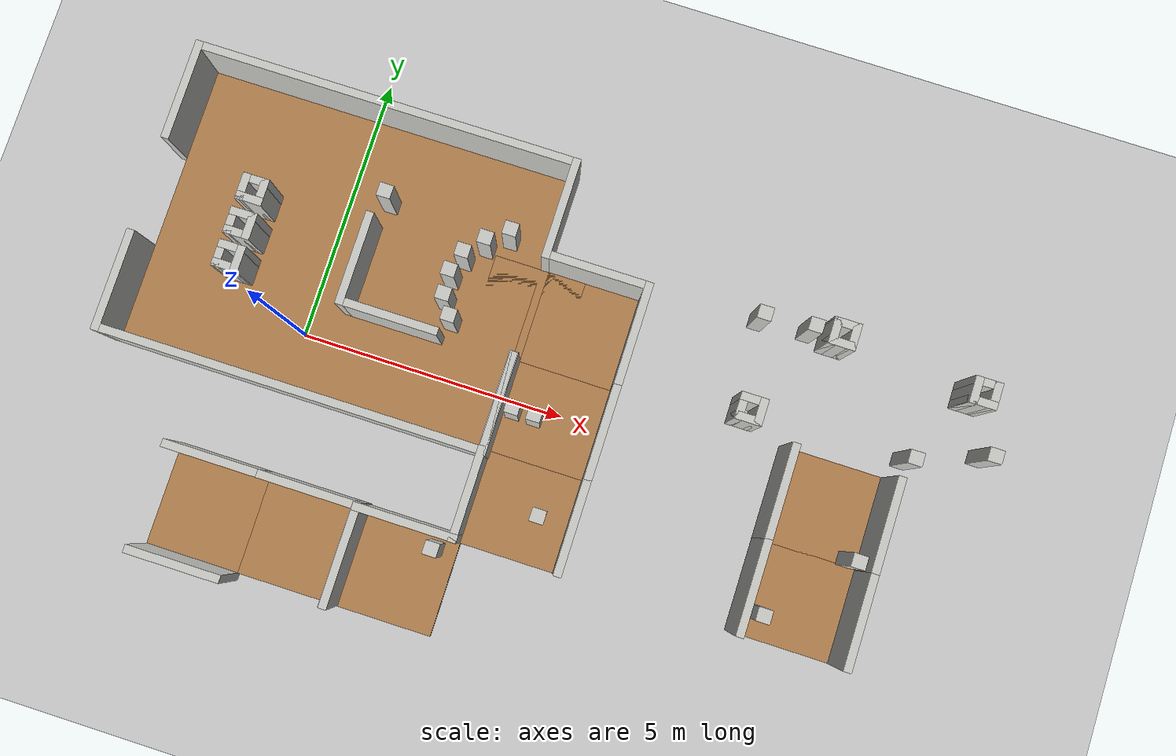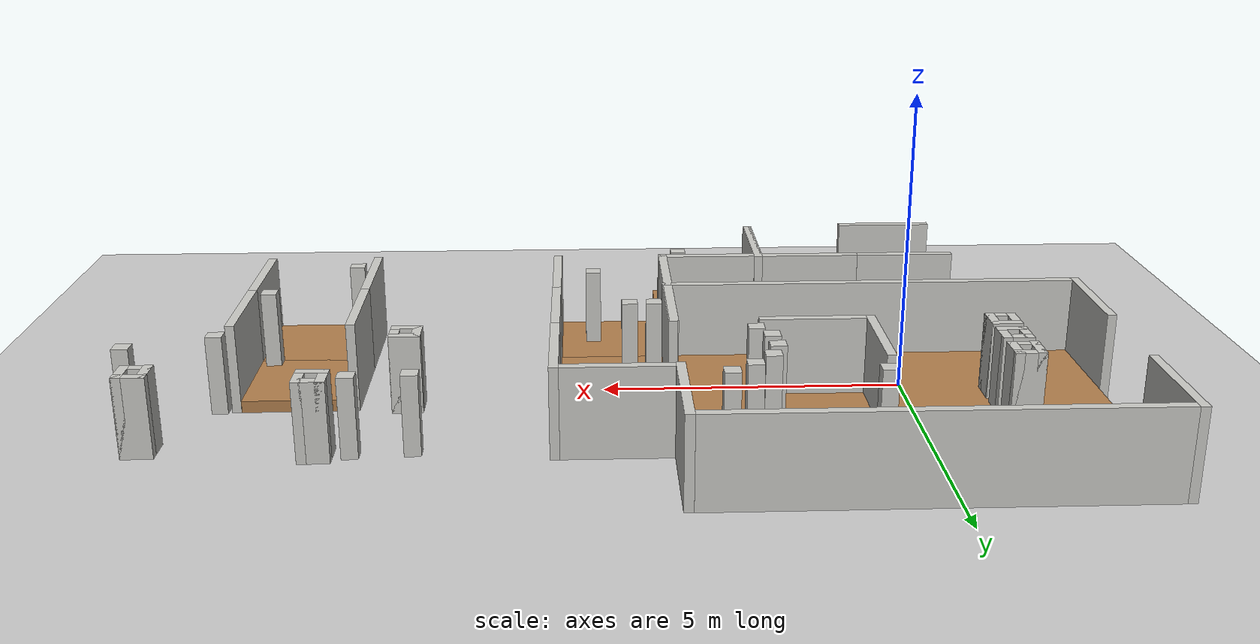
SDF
<sdf version="1.6">
 <world name="default">
  <model name="ground_plane">
   <static>1</static>
   <link name="link">
    <collision name="collision">
     <geometry><plane><normal>0 0 1</normal><size>100 100</size></plane></geometry>
     <surface><friction><ode><mu>100</mu><mu2>50</mu2></ode></friction></surface>
    </collision>
    <visual name="visual">
     <cast_shadows>0</cast_shadows>
     <geometry><plane><normal>0 0 1</normal><size>100 100</size></plane></geometry>
     <material>
      <script><uri>file://media/materials/scripts/gazebo.material</uri><name>Gazebo/Grey</name></script>
     </material>
    </visual>
   </link>
  </model>
  <model name="nerve_straight_7">
   <pose>-0.5793 -3.59925 0 0 0 -1.5708</pose>
   <link name="Wall_0">
    <collision name="Wall_0_Collision">
     <geometry><box><size>1.76 1.75 0.2</size></box></geometry>
     <pose>0 0 0.1 0 -0 0</pose>
    </collision>
    <visual name="Wall_0_Visual">
     <pose>0 0 0.1 0 -0 0</pose>
     <geometry><box><size>1.76 1.75 0.2</size></box></geometry>
     <material>
      <script><uri>file://media/materials/scripts/gazebo.material</uri><name>Gazebo/Wood</name></script>
      <ambient>1 0.764706 0.305882 1</ambient>
     </material>
    </visual>
    <pose>0.005 -0.002 0 0 -0 3.14159</pose>
   </link>
   <link name="Wall_2">
    <collision name="Wall_2_Collision">
     <geometry><box><size>1.75 0.15 1.5</size></box></geometry>
     <pose>0 0 0.75 0 -0 0</pose>
    </collision>
    <visual name="Wall_2_Visual">
     <pose>0 0 0.75 0 -0 0</pose>
     <geometry><box><size>1.75 0.15 1.5</size></box></geometry>
     <material>
      <script><uri>file://media/materials/scripts/gazebo.material</uri><name>Gazebo/CeilingTiled</name></script>
      <ambient>1 0.764706 0.305882 1</ambient>
     </material>
    </visual>
    <pose>-0.955 0.002 0 0 0 -1.5708</pose>
   </link>
   <link name="Wall_4">
    <collision name="Wall_4_Collision">
     <geometry><box><size>1.75 0.15 1.5</size></box></geometry>
     <pose>0 0 0.75 0 -0 0</pose>
    </collision>
    <visual name="Wall_4_Visual">
     <pose>0 0 0.75 0 -0 0</pose>
     <geometry><box><size>1.75 0.15 1.5</size></box></geometry>
     <material>
      <script><uri>file://media/materials/scripts/gazebo.material</uri><name>Gazebo/CeilingTiled</name></script>
      <ambient>1 0.764706 0.305882 1</ambient>
     </material>
    </visual>
    <pose>0.955 0.002 0 0 0 -1.5708</pose>
   </link>
   <static>1</static>
  </model>
  <model name="nerve_corner_5">
   <pose>1.24131 -3.5279 0 0 0 -1.5708</pose>
   <link name="Wall_0">
    <collision name="Wall_0_Collision">
     <geometry><box><size>1.76 1.75 0.2</size></box></geometry>
     <pose>0 0 0.1 0 -0 0</pose>
    </collision>
    <visual name="Wall_0_Visual">
     <pose>0 0 0.1 0 -0 0</pose>
     <geometry><box><size>1.76 1.75 0.2</size></box></geometry>
     <material>
      <script><uri>file://media/materials/scripts/gazebo.material</uri><name>Gazebo/Wood</name></script>
      <ambient>1 0.764706 0.305882 1</ambient>
     </material>
    </visual>
    <pose>0.077507 -0.077007 0 0 -0 3.14159</pose>
   </link>
   <link name="Wall_2">
    <collision name="Wall_2_Collision">
     <geometry><box><size>1.75 0.15 1.5</size></box></geometry>
     <pose>0 0 0.75 0 -0 0</pose>
    </collision>
    <visual name="Wall_2_Visual">
     <pose>0 0 0.75 0 -0 0</pose>
     <geometry><box><size>1.75 0.15 1.5</size></box></geometry>
     <material>
      <script><uri>file://media/materials/scripts/gazebo.material</uri><name>Gazebo/CeilingTiled</name></script>
      <ambient>1 0.764706 0.305882 1</ambient>
     </material>
    </visual>
    <pose>-0.882493 -0.073007 0 0 0 -1.5708</pose>
   </link>
   <link name="Wall_4">
    <collision name="Wall_4_Collision">
     <geometry><box><size>1.91042 0.15 1.5</size></box></geometry>
     <pose>0 0 0.75 0 -0 0</pose>
    </collision>
    <visual name="Wall_4_Visual">
     <pose>0 0 0.75 0 -0 0</pose>
     <geometry><box><size>1.91042 0.15 1.5</size></box></geometry>
     <material>
      <script><uri>file://media/materials/scripts/gazebo.material</uri><name>Gazebo/CeilingTiled</name></script>
      <ambient>1 0.764706 0.305882 1</ambient>
     </material>
    </visual>
    <pose>-0.002284 0.876825 0 0 -0 3.1414</pose>
   </link>
   <static>1</static>
  </model>
  <model name="nerve_corner_7">
   <pose>3.00607 -3.54167 0 0 -0 0</pose>
   <link name="Wall_0">
    <collision name="Wall_0_Collision">
     <geometry><box><size>1.76 1.75 0.2</size></box></geometry>
     <pose>0 0 0.1 0 -0 0</pose>
    </collision>
    <visual name="Wall_0_Visual">
     <pose>0 0 0.1 0 -0 0</pose>
     <geometry><box><size>1.76 1.75 0.2</size></box></geometry>
     <material>
      <script><uri>file://media/materials/scripts/gazebo.material</uri><name>Gazebo/Wood</name></script>
      <ambient>1 0.764706 0.305882 1</ambient>
     </material>
    </visual>
    <pose>0.077507 -0.077007 0 0 -0 3.14159</pose>
   </link>
   <link name="Wall_2">
    <collision name="Wall_2_Collision">
     <geometry><box><size>1.75 0.15 1.5</size></box></geometry>
     <pose>0 0 0.75 0 -0 0</pose>
    </collision>
    <visual name="Wall_2_Visual">
     <pose>0 0 0.75 0 -0 0</pose>
     <geometry><box><size>1.75 0.15 1.5</size></box></geometry>
     <material>
      <script><uri>file://media/materials/scripts/gazebo.material</uri><name>Gazebo/CeilingTiled</name></script>
      <ambient>1 0.764706 0.305882 1</ambient>
     </material>
    </visual>
    <pose>-0.882493 -0.073007 0 0 0 -1.5708</pose>
   </link>
   <link name="Wall_4">
    <collision name="Wall_4_Collision">
     <geometry><box><size>1.91042 0.15 1.5</size></box></geometry>
     <pose>0 0 0.75 0 -0 0</pose>
    </collision>
    <visual name="Wall_4_Visual">
     <pose>0 0 0.75 0 -0 0</pose>
     <geometry><box><size>1.91042 0.15 1.5</size></box></geometry>
     <material>
      <script><uri>file://media/materials/scripts/gazebo.material</uri><name>Gazebo/CeilingTiled</name></script>
      <ambient>1 0.764706 0.305882 1</ambient>
     </material>
    </visual>
    <pose>-0.002284 0.876825 0 0 -0 3.1414</pose>
   </link>
   <static>1</static>
  </model>
  <model name="nerve_straight_8">
   <pose>4.83321 -1.87129 0 0 -0 0</pose>
   <link name="Wall_0">
    <collision name="Wall_0_Collision">
     <geometry><box><size>1.76 1.75 0.2</size></box></geometry>
     <pose>0 0 0.1 0 -0 0</pose>
    </collision>
    <visual name="Wall_0_Visual">
     <pose>0 0 0.1 0 -0 0</pose>
     <geometry><box><size>1.76 1.75 0.2</size></box></geometry>
     <material>
      <script><uri>file://media/materials/scripts/gazebo.material</uri><name>Gazebo/Wood</name></script>
      <ambient>1 0.764706 0.305882 1</ambient>
     </material>
    </visual>
    <pose>0.005 -0.002 0 0 -0 3.14159</pose>
   </link>
   <link name="Wall_2">
    <collision name="Wall_2_Collision">
     <geometry><box><size>1.75 0.15 1.5</size></box></geometry>
     <pose>0 0 0.75 0 -0 0</pose>
    </collision>
    <visual name="Wall_2_Visual">
     <pose>0 0 0.75 0 -0 0</pose>
     <geometry><box><size>1.75 0.15 1.5</size></box></geometry>
     <material>
      <script><uri>file://media/materials/scripts/gazebo.material</uri><name>Gazebo/CeilingTiled</name></script>
      <ambient>1 0.764706 0.305882 1</ambient>
     </material>
    </visual>
    <pose>-0.955 0.002 0 0 0 -1.5708</pose>
   </link>
   <link name="Wall_4">
    <collision name="Wall_4_Collision">
     <geometry><box><size>1.75 0.15 1.5</size></box></geometry>
     <pose>0 0 0.75 0 -0 0</pose>
    </collision>
    <visual name="Wall_4_Visual">
     <pose>0 0 0.75 0 -0 0</pose>
     <geometry><box><size>1.75 0.15 1.5</size></box></geometry>
     <material>
      <script><uri>file://media/materials/scripts/gazebo.material</uri><name>Gazebo/CeilingTiled</name></script>
      <ambient>1 0.764706 0.305882 1</ambient>
     </material>
    </visual>
    <pose>0.955 0.002 0 0 0 -1.5708</pose>
   </link>
   <static>1</static>
  </model>
  <model name="nerve_straight_8_clone">
   <pose>4.83651 -0.139064 0 0 -0 0</pose>
   <link name="Wall_0">
    <collision name="Wall_0_Collision">
     <geometry><box><size>1.76 1.75 0.2</size></box></geometry>
     <pose>0 0 0.1 0 -0 0</pose>
    </collision>
    <visual name="Wall_0_Visual">
     <pose>0 0 0.1 0 -0 0</pose>
     <geometry><box><size>1.76 1.75 0.2</size></box></geometry>
     <material>
      <script><uri>file://media/materials/scripts/gazebo.material</uri><name>Gazebo/Wood</name></script>
      <ambient>1 0.764706 0.305882 1</ambient>
     </material>
    </visual>
    <pose>0.005 -0.002 0 0 -0 3.14159</pose>
   </link>
   <link name="Wall_2">
    <collision name="Wall_2_Collision">
     <geometry><box><size>1.75 0.15 1.5</size></box></geometry>
     <pose>0 0 0.75 0 -0 0</pose>
    </collision>
    <visual name="Wall_2_Visual">
     <pose>0 0 0.75 0 -0 0</pose>
     <geometry><box><size>1.75 0.15 1.5</size></box></geometry>
     <material>
      <script><uri>file://media/materials/scripts/gazebo.material</uri><name>Gazebo/CeilingTiled</name></script>
      <ambient>1 0.764706 0.305882 1</ambient>
     </material>
    </visual>
    <pose>-0.955 0.002 0 0 0 -1.5708</pose>
   </link>
   <link name="Wall_4">
    <collision name="Wall_4_Collision">
     <geometry><box><size>1.75 0.15 1.5</size></box></geometry>
     <pose>0 0 0.75 0 -0 0</pose>
    </collision>
    <visual name="Wall_4_Visual">
     <pose>0 0 0.75 0 -0 0</pose>
     <geometry><box><size>1.75 0.15 1.5</size></box></geometry>
     <material>
      <script><uri>file://media/materials/scripts/gazebo.material</uri><name>Gazebo/CeilingTiled</name></script>
      <ambient>1 0.764706 0.305882 1</ambient>
     </material>
    </visual>
    <pose>0.955 0.002 0 0 0 -1.5708</pose>
   </link>
   <static>1</static>
  </model>
  <model name="nerve_corner_5_clone">
   <pose>4.91717 1.68936 0 0 0 -1.5708</pose>
   <link name="Wall_0">
    <collision name="Wall_0_Collision">
     <geometry><box><size>1.76 1.75 0.2</size></box></geometry>
     <pose>0 0 0.1 0 -0 0</pose>
    </collision>
    <visual name="Wall_0_Visual">
     <pose>0 0 0.1 0 -0 0</pose>
     <geometry><box><size>1.76 1.75 0.2</size></box></geometry>
     <material>
      <script><uri>file://media/materials/scripts/gazebo.material</uri><name>Gazebo/Wood</name></script>
      <ambient>1 0.764706 0.305882 1</ambient>
     </material>
    </visual>
    <pose>0.077507 -0.077007 0 0 -0 3.14159</pose>
   </link>
   <link name="Wall_2">
    <collision name="Wall_2_Collision">
     <geometry><box><size>1.75 0.15 1.5</size></box></geometry>
     <pose>0 0 0.75 0 -0 0</pose>
    </collision>
    <visual name="Wall_2_Visual">
     <pose>0 0 0.75 0 -0 0</pose>
     <geometry><box><size>1.75 0.15 1.5</size></box></geometry>
     <material>
      <script><uri>file://media/materials/scripts/gazebo.material</uri><name>Gazebo/CeilingTiled</name></script>
      <ambient>1 0.764706 0.305882 1</ambient>
     </material>
    </visual>
    <pose>-0.882493 -0.073007 0 0 0 -1.5708</pose>
   </link>
   <link name="Wall_4">
    <collision name="Wall_4_Collision">
     <geometry><box><size>1.91042 0.15 1.5</size></box></geometry>
     <pose>0 0 0.75 0 -0 0</pose>
    </collision>
    <visual name="Wall_4_Visual">
     <pose>0 0 0.75 0 -0 0</pose>
     <geometry><box><size>1.91042 0.15 1.5</size></box></geometry>
     <material>
      <script><uri>file://media/materials/scripts/gazebo.material</uri><name>Gazebo/CeilingTiled</name></script>
      <ambient>1 0.764706 0.305882 1</ambient>
     </material>
    </visual>
    <pose>-0.002284 0.876825 0 0 -0 3.1414</pose>
   </link>
   <static>1</static>
  </model>
  <model name="nerve_room_3x4">
   <pose>0.322043 1.61667 0 0 0 -1.57079</pose>
   <link name="Wall_11">
    <collision name="Wall_11_Collision">
     <geometry><box><size>7 0.15 1.5</size></box></geometry>
     <pose>0 0 0.75 0 -0 0</pose>
    </collision>
    <visual name="Wall_11_Visual">
     <pose>0 0 0.75 0 -0 0</pose>
     <geometry><box><size>7 0.15 1.5</size></box></geometry>
     <material>
      <script><uri>file://media/materials/scripts/gazebo.material</uri><name>Gazebo/CeilingTiled</name></script>
      <ambient>1 0.764706 0.305882 1</ambient>
     </material>
    </visual>
    <pose>-2.69862 -0.000423 0 0 0 -1.5708</pose>
   </link>
   <link name="Wall_13">
    <collision name="Wall_13_Collision">
     <geometry><box><size>7 0.15 1.5</size></box></geometry>
     <pose>0 0 0.75 0 -0 0</pose>
    </collision>
    <visual name="Wall_13_Visual">
     <pose>0 0 0.75 0 -0 0</pose>
     <geometry><box><size>7 0.15 1.5</size></box></geometry>
     <material>
      <script><uri>file://media/materials/scripts/gazebo.material</uri><name>Gazebo/CeilingTiled</name></script>
      <ambient>1 0.764706 0.305882 1</ambient>
     </material>
    </visual>
    <pose>2.69862 -0.000308 0 0 0 -1.5708</pose>
   </link>
   <link name="Wall_15">
    <collision name="Wall_15_Collision">
     <geometry><box><size>1.9 0.15 1.5</size></box></geometry>
     <pose>0 0 0.75 0 -0 0</pose>
    </collision>
    <visual name="Wall_15_Visual">
     <pose>0 0 0.75 0 -0 0</pose>
     <geometry><box><size>1.9 0.15 1.5</size></box></geometry>
     <material>
      <script><uri>file://media/materials/scripts/gazebo.material</uri><name>Gazebo/CeilingTiled</name></script>
      <ambient>1 0.764706 0.305882 1</ambient>
     </material>
    </visual>
    <pose>-1.82276 -3.57547 0 0 -0 0</pose>
   </link>
   <link name="Wall_17">
    <collision name="Wall_17_Collision">
     <geometry><box><size>1.9 0.15 1.5</size></box></geometry>
     <pose>0 0 0.75 0 -0 0</pose>
    </collision>
    <visual name="Wall_17_Visual">
     <pose>0 0 0.75 0 -0 0</pose>
     <geometry><box><size>1.9 0.15 1.5</size></box></geometry>
     <material>
      <script><uri>file://media/materials/scripts/gazebo.material</uri><name>Gazebo/CeilingTiled</name></script>
      <ambient>1 0.764706 0.305882 1</ambient>
     </material>
    </visual>
    <pose>-1.82217 3.57448 0 0 -0 0</pose>
   </link>
   <link name="Wall_19">
    <collision name="Wall_19_Collision">
     <geometry><box><size>1.9 0.15 1.5</size></box></geometry>
     <pose>0 0 0.75 0 -0 0</pose>
    </collision>
    <visual name="Wall_19_Visual">
     <pose>0 0 0.75 0 -0 0</pose>
     <geometry><box><size>1.9 0.15 1.5</size></box></geometry>
     <material>
      <script><uri>file://media/materials/scripts/gazebo.material</uri><name>Gazebo/CeilingTiled</name></script>
      <ambient>1 0.764706 0.305882 1</ambient>
     </material>
    </visual>
    <pose>1.82197 3.57547 0 0 -0 0</pose>
   </link>
   <link name="Wall_21">
    <collision name="Wall_21_Collision">
     <geometry><box><size>1.9 0.15 1.5</size></box></geometry>
     <pose>0 0 0.75 0 -0 0</pose>
    </collision>
    <visual name="Wall_21_Visual">
     <pose>0 0 0.75 0 -0 0</pose>
     <geometry><box><size>1.9 0.15 1.5</size></box></geometry>
     <material>
      <script><uri>file://media/materials/scripts/gazebo.material</uri><name>Gazebo/CeilingTiled</name></script>
      <ambient>1 0.764706 0.305882 1</ambient>
     </material>
    </visual>
    <pose>1.82281 -3.57503 0 0 -0 0</pose>
   </link>
   <link name="Wall_6">
    <collision name="Wall_6_Collision">
     <geometry><box><size>7 5.25 0.2</size></box></geometry>
     <pose>0 0 0.1 0 -0 0</pose>
    </collision>
    <visual name="Wall_6_Visual">
     <pose>0 0 0.1 0 -0 0</pose>
     <geometry><box><size>7 5.25 0.2</size></box></geometry>
     <material>
      <script><uri>file://media/materials/scripts/gazebo.material</uri><name>Gazebo/Wood</name></script>
      <ambient>1 0.764706 0.305882 1</ambient>
     </material>
    </visual>
    <pose>-0.001169 -0.000255 0 0 -0 1.5708</pose>
   </link>
   <static>1</static>
  </model>
  <model name="nerve_platform_0">
   <pose>3.80884 1.61462 0 0 -0 0</pose>
   <link name="Wall_6">
    <collision name="Wall_6_Collision">
     <geometry><box><size>1.76 1.75 0.2</size></box></geometry>
     <pose>0 0 0.1 0 -0 0</pose>
    </collision>
    <visual name="Wall_6_Visual">
     <pose>0 0 0.1 0 -0 0</pose>
     <geometry><box><size>1.76 1.75 0.2</size></box></geometry>
     <material>
      <script><uri>file://media/materials/scripts/gazebo.material</uri><name>Gazebo/Wood</name></script>
      <ambient>1 0.764706 0.305882 1</ambient>
     </material>
    </visual>
    <pose>0 0 0 0 -0 1.5708</pose>
   </link>
   <static>1</static>
  </model>
  <model name="nerve_straight_12_clone_1_clone_clone">
   <pose>10.0206 -0.155026 0 0 -0 3.14159</pose>
   <link name="Wall_0">
    <collision name="Wall_0_Collision">
     <geometry><box><size>1.76 1.75 0.2</size></box></geometry>
     <pose>0 0 0.1 0 -0 0</pose>
    </collision>
    <visual name="Wall_0_Visual">
     <pose>0 0 0.1 0 -0 0</pose>
     <geometry><box><size>1.76 1.75 0.2</size></box></geometry>
     <material>
      <script><uri>file://media/materials/scripts/gazebo.material</uri><name>Gazebo/Wood</name></script>
      <ambient>1 0.764706 0.305882 1</ambient>
     </material>
    </visual>
    <pose>0.005 -0.002 0 0 -0 3.14159</pose>
   </link>
   <link name="Wall_2">
    <collision name="Wall_2_Collision">
     <geometry><box><size>1.75 0.15 1.5</size></box></geometry>
     <pose>0 0 0.75 0 -0 0</pose>
    </collision>
    <visual name="Wall_2_Visual">
     <pose>0 0 0.75 0 -0 0</pose>
     <geometry><box><size>1.75 0.15 1.5</size></box></geometry>
     <material>
      <script><uri>file://media/materials/scripts/gazebo.material</uri><name>Gazebo/CeilingTiled</name></script>
      <ambient>1 0.764706 0.305882 1</ambient>
     </material>
    </visual>
    <pose>-0.955 0.002 0 0 0 -1.5708</pose>
   </link>
   <link name="Wall_4">
    <collision name="Wall_4_Collision">
     <geometry><box><size>1.75 0.15 1.5</size></box></geometry>
     <pose>0 0 0.75 0 -0 0</pose>
    </collision>
    <visual name="Wall_4_Visual">
     <pose>0 0 0.75 0 -0 0</pose>
     <geometry><box><size>1.75 0.15 1.5</size></box></geometry>
     <material>
      <script><uri>file://media/materials/scripts/gazebo.material</uri><name>Gazebo/CeilingTiled</name></script>
      <ambient>1 0.764706 0.305882 1</ambient>
     </material>
    </visual>
    <pose>0.955 0.002 0 0 0 -1.5708</pose>
   </link>
   <static>1</static>
  </model>
  <model name="nerve_straight_12_clone_1_clone_clone_0">
   <pose>10.0214 -1.8901 0 0 -0 3.14159</pose>
   <link name="Wall_0">
    <collision name="Wall_0_Collision">
     <geometry><box><size>1.76 1.75 0.2</size></box></geometry>
     <pose>0 0 0.1 0 -0 0</pose>
    </collision>
    <visual name="Wall_0_Visual">
     <pose>0 0 0.1 0 -0 0</pose>
     <geometry><box><size>1.76 1.75 0.2</size></box></geometry>
     <material>
      <script><uri>file://media/materials/scripts/gazebo.material</uri><name>Gazebo/Wood</name></script>
      <ambient>1 0.764706 0.305882 1</ambient>
     </material>
    </visual>
    <pose>0.005 -0.002 0 0 -0 3.14159</pose>
   </link>
   <link name="Wall_2">
    <collision name="Wall_2_Collision">
     <geometry><box><size>1.75 0.15 1.5</size></box></geometry>
     <pose>0 0 0.75 0 -0 0</pose>
    </collision>
    <visual name="Wall_2_Visual">
     <pose>0 0 0.75 0 -0 0</pose>
     <geometry><box><size>1.75 0.15 1.5</size></box></geometry>
     <material>
      <script><uri>file://media/materials/scripts/gazebo.material</uri><name>Gazebo/CeilingTiled</name></script>
      <ambient>1 0.764706 0.305882 1</ambient>
     </material>
    </visual>
    <pose>-0.955 0.002 0 0 0 -1.5708</pose>
   </link>
   <link name="Wall_4">
    <collision name="Wall_4_Collision">
     <geometry><box><size>1.75 0.15 1.5</size></box></geometry>
     <pose>0 0 0.75 0 -0 0</pose>
    </collision>
    <visual name="Wall_4_Visual">
     <pose>0 0 0.75 0 -0 0</pose>
     <geometry><box><size>1.75 0.15 1.5</size></box></geometry>
     <material>
      <script><uri>file://media/materials/scripts/gazebo.material</uri><name>Gazebo/CeilingTiled</name></script>
      <ambient>1 0.764706 0.305882 1</ambient>
     </material>
    </visual>
    <pose>0.955 0.002 0 0 0 -1.5708</pose>
   </link>
   <static>1</static>
  </model>
  <model name="nerve_obs_squarepillar_small_clone_0">
   <pose>3.57983 -2.95356 0.2 0 -0 0</pose>
   <link name="Wall_40">
    <collision name="Wall_40_Collision">
     <geometry><box><size>0.26 0.25 1.3</size></box></geometry>
     <pose>0 0 0.65 0 -0 0</pose>
    </collision>
    <visual name="Wall_40_Visual">
     <pose>0 0 0.65 0 -0 0</pose>
     <geometry><box><size>0.26 0.25 1.3</size></box></geometry>
     <material>
      <script><uri>file://media/materials/scripts/gazebo.material</uri><name>Gazebo/CeilingTiled</name></script>
      <ambient>1 0.764706 0.305882 1</ambient>
     </material>
    </visual>
   </link>
   <static>1</static>
  </model>
  <model name="nerve_obs_squarepillar_large_clone_1">
   <pose>-1.44891 0.817753 0.2 0 -0 0</pose>
   <link name="Wall_31">
    <collision name="Wall_31_Collision">
     <geometry><box><size>0.5 0.15 1.3</size></box></geometry>
     <pose>0 0 0.65 0 -0 0</pose>
    </collision>
    <visual name="Wall_31_Visual">
     <pose>0 0 0.65 0 -0 0</pose>
     <geometry><box><size>0.5 0.15 1.3</size></box></geometry>
     <material>
      <script><uri>file://media/materials/scripts/gazebo.material</uri><name>Gazebo/CeilingTiled</name></script>
      <ambient>1 0.764706 0.305882 1</ambient>
     </material>
    </visual>
    <pose>-0.175 0 0 0 0 -1.5708</pose>
   </link>
   <link name="Wall_32">
    <collision name="Wall_32_Collision">
     <geometry><box><size>0.5 0.15 1.3</size></box></geometry>
     <pose>0 0 0.65 0 -0 0</pose>
    </collision>
    <visual name="Wall_32_Visual">
     <pose>0 0 0.65 0 -0 0</pose>
     <geometry><box><size>0.5 0.15 1.3</size></box></geometry>
     <material>
      <script><uri>file://media/materials/scripts/gazebo.material</uri><name>Gazebo/CeilingTiled</name></script>
      <ambient>1 0.764706 0.305882 1</ambient>
     </material>
    </visual>
    <pose>0 -0.175 0 0 -0 0</pose>
   </link>
   <link name="Wall_33">
    <collision name="Wall_33_Collision">
     <geometry><box><size>0.5 0.15 1.3</size></box></geometry>
     <pose>0 0 0.65 0 -0 0</pose>
    </collision>
    <visual name="Wall_33_Visual">
     <pose>0 0 0.65 0 -0 0</pose>
     <geometry><box><size>0.5 0.15 1.3</size></box></geometry>
     <material>
      <script><uri>file://media/materials/scripts/gazebo.material</uri><name>Gazebo/CeilingTiled</name></script>
      <ambient>1 0.764706 0.305882 1</ambient>
     </material>
    </visual>
    <pose>0.175 0 0 0 -0 1.5708</pose>
   </link>
   <link name="Wall_34">
    <collision name="Wall_34_Collision">
     <geometry><box><size>0.5 0.15 1.3</size></box></geometry>
     <pose>0 0 0.65 0 -0 0</pose>
    </collision>
    <visual name="Wall_34_Visual">
     <pose>0 0 0.65 0 -0 0</pose>
     <geometry><box><size>0.5 0.15 1.3</size></box></geometry>
     <material>
      <script><uri>file://media/materials/scripts/gazebo.material</uri><name>Gazebo/CeilingTiled</name></script>
      <ambient>1 0.764706 0.305882 1</ambient>
     </material>
    </visual>
    <pose>0 0.175 0 0 -0 3.14159</pose>
   </link>
   <static>1</static>
  </model>
  <model name="nerve_obs_squarepillar_large_clone_2">
   <pose>-1.44891 1.43952 0.2 0 -0 0</pose>
   <link name="Wall_31">
    <collision name="Wall_31_Collision">
     <geometry><box><size>0.5 0.15 1.3</size></box></geometry>
     <pose>0 0 0.65 0 -0 0</pose>
    </collision>
    <visual name="Wall_31_Visual">
     <pose>0 0 0.65 0 -0 0</pose>
     <geometry><box><size>0.5 0.15 1.3</size></box></geometry>
     <material>
      <script><uri>file://media/materials/scripts/gazebo.material</uri><name>Gazebo/CeilingTiled</name></script>
      <ambient>1 0.764706 0.305882 1</ambient>
     </material>
    </visual>
    <pose>-0.175 0 0 0 0 -1.5708</pose>
   </link>
   <link name="Wall_32">
    <collision name="Wall_32_Collision">
     <geometry><box><size>0.5 0.15 1.3</size></box></geometry>
     <pose>0 0 0.65 0 -0 0</pose>
    </collision>
    <visual name="Wall_32_Visual">
     <pose>0 0 0.65 0 -0 0</pose>
     <geometry><box><size>0.5 0.15 1.3</size></box></geometry>
     <material>
      <script><uri>file://media/materials/scripts/gazebo.material</uri><name>Gazebo/CeilingTiled</name></script>
      <ambient>1 0.764706 0.305882 1</ambient>
     </material>
    </visual>
    <pose>0 -0.175 0 0 -0 0</pose>
   </link>
   <link name="Wall_33">
    <collision name="Wall_33_Collision">
     <geometry><box><size>0.5 0.15 1.3</size></box></geometry>
     <pose>0 0 0.65 0 -0 0</pose>
    </collision>
    <visual name="Wall_33_Visual">
     <pose>0 0 0.65 0 -0 0</pose>
     <geometry><box><size>0.5 0.15 1.3</size></box></geometry>
     <material>
      <script><uri>file://media/materials/scripts/gazebo.material</uri><name>Gazebo/CeilingTiled</name></script>
      <ambient>1 0.764706 0.305882 1</ambient>
     </material>
    </visual>
    <pose>0.175 0 0 0 -0 1.5708</pose>
   </link>
   <link name="Wall_34">
    <collision name="Wall_34_Collision">
     <geometry><box><size>0.5 0.15 1.3</size></box></geometry>
     <pose>0 0 0.65 0 -0 0</pose>
    </collision>
    <visual name="Wall_34_Visual">
     <pose>0 0 0.65 0 -0 0</pose>
     <geometry><box><size>0.5 0.15 1.3</size></box></geometry>
     <material>
      <script><uri>file://media/materials/scripts/gazebo.material</uri><name>Gazebo/CeilingTiled</name></script>
      <ambient>1 0.764706 0.305882 1</ambient>
     </material>
    </visual>
    <pose>0 0.175 0 0 -0 3.14159</pose>
   </link>
   <static>1</static>
  </model>
  <model name="nerve_obs_squarepillar_large_clone_3">
   <pose>-1.44891 2.08679 0.2 0 -0 0</pose>
   <link name="Wall_31">
    <collision name="Wall_31_Collision">
     <geometry><box><size>0.5 0.15 1.3</size></box></geometry>
     <pose>0 0 0.65 0 -0 0</pose>
    </collision>
    <visual name="Wall_31_Visual">
     <pose>0 0 0.65 0 -0 0</pose>
     <geometry><box><size>0.5 0.15 1.3</size></box></geometry>
     <material>
      <script><uri>file://media/materials/scripts/gazebo.material</uri><name>Gazebo/CeilingTiled</name></script>
      <ambient>1 0.764706 0.305882 1</ambient>
     </material>
    </visual>
    <pose>-0.175 0 0 0 0 -1.5708</pose>
   </link>
   <link name="Wall_32">
    <collision name="Wall_32_Collision">
     <geometry><box><size>0.5 0.15 1.3</size></box></geometry>
     <pose>0 0 0.65 0 -0 0</pose>
    </collision>
    <visual name="Wall_32_Visual">
     <pose>0 0 0.65 0 -0 0</pose>
     <geometry><box><size>0.5 0.15 1.3</size></box></geometry>
     <material>
      <script><uri>file://media/materials/scripts/gazebo.material</uri><name>Gazebo/CeilingTiled</name></script>
      <ambient>1 0.764706 0.305882 1</ambient>
     </material>
    </visual>
    <pose>0 -0.175 0 0 -0 0</pose>
   </link>
   <link name="Wall_33">
    <collision name="Wall_33_Collision">
     <geometry><box><size>0.5 0.15 1.3</size></box></geometry>
     <pose>0 0 0.65 0 -0 0</pose>
    </collision>
    <visual name="Wall_33_Visual">
     <pose>0 0 0.65 0 -0 0</pose>
     <geometry><box><size>0.5 0.15 1.3</size></box></geometry>
     <material>
      <script><uri>file://media/materials/scripts/gazebo.material</uri><name>Gazebo/CeilingTiled</name></script>
      <ambient>1 0.764706 0.305882 1</ambient>
     </material>
    </visual>
    <pose>0.175 0 0 0 -0 1.5708</pose>
   </link>
   <link name="Wall_34">
    <collision name="Wall_34_Collision">
     <geometry><box><size>0.5 0.15 1.3</size></box></geometry>
     <pose>0 0 0.65 0 -0 0</pose>
    </collision>
    <visual name="Wall_34_Visual">
     <pose>0 0 0.65 0 -0 0</pose>
     <geometry><box><size>0.5 0.15 1.3</size></box></geometry>
     <material>
      <script><uri>file://media/materials/scripts/gazebo.material</uri><name>Gazebo/CeilingTiled</name></script>
      <ambient>1 0.764706 0.305882 1</ambient>
     </material>
    </visual>
    <pose>0 0.175 0 0 -0 3.14159</pose>
   </link>
   <static>1</static>
  </model>
  <model name="nerve_obs_squarepillar_small_clone_0_clone_1">
   <pose>7.8922 2.74495 0.2 0 -0 0</pose>
   <link name="Wall_40">
    <collision name="Wall_40_Collision">
     <geometry><box><size>0.26 0.25 1.3</size></box></geometry>
     <pose>0 0 0.65 0 -0 0</pose>
    </collision>
    <visual name="Wall_40_Visual">
     <pose>0 0 0.65 0 -0 0</pose>
     <geometry><box><size>0.26 0.25 1.3</size></box></geometry>
     <material>
      <script><uri>file://media/materials/scripts/gazebo.material</uri><name>Gazebo/CeilingTiled</name></script>
      <ambient>1 0.764706 0.305882 1</ambient>
     </material>
    </visual>
   </link>
   <static>1</static>
  </model>
  <model name="nerve_obs_squarepillar_small_clone_0_clone_2">
   <pose>8.81307 2.81 0.2 0 -0 0</pose>
   <link name="Wall_40">
    <collision name="Wall_40_Collision">
     <geometry><box><size>0.26 0.25 1.3</size></box></geometry>
     <pose>0 0 0.65 0 -0 0</pose>
    </collision>
    <visual name="Wall_40_Visual">
     <pose>0 0 0.65 0 -0 0</pose>
     <geometry><box><size>0.26 0.25 1.3</size></box></geometry>
     <material>
      <script><uri>file://media/materials/scripts/gazebo.material</uri><name>Gazebo/CeilingTiled</name></script>
      <ambient>1 0.764706 0.305882 1</ambient>
     </material>
    </visual>
   </link>
   <static>1</static>
  </model>
  <model name="nerve_obs_squarepillar_small_clone_0_clone_4">
   <pose>12.4173 1.55796 0.2 0 -0 0</pose>
   <link name="Wall_40">
    <collision name="Wall_40_Collision">
     <geometry><box><size>0.26 0.25 1.3</size></box></geometry>
     <pose>0 0 0.65 0 -0 0</pose>
    </collision>
    <visual name="Wall_40_Visual">
     <pose>0 0 0.65 0 -0 0</pose>
     <geometry><box><size>0.26 0.25 1.3</size></box></geometry>
     <material>
      <script><uri>file://media/materials/scripts/gazebo.material</uri><name>Gazebo/CeilingTiled</name></script>
      <ambient>1 0.764706 0.305882 1</ambient>
     </material>
    </visual>
   </link>
   <static>1</static>
  </model>
  <model name="nerve_obs_squarepillar_small_clone_0_clone_5">
   <pose>11.1119 1.09702 0.2 0 -0 0</pose>
   <link name="Wall_40">
    <collision name="Wall_40_Collision">
     <geometry><box><size>0.26 0.25 1.3</size></box></geometry>
     <pose>0 0 0.65 0 -0 0</pose>
    </collision>
    <visual name="Wall_40_Visual">
     <pose>0 0 0.65 0 -0 0</pose>
     <geometry><box><size>0.26 0.25 1.3</size></box></geometry>
     <material>
      <script><uri>file://media/materials/scripts/gazebo.material</uri><name>Gazebo/CeilingTiled</name></script>
      <ambient>1 0.764706 0.305882 1</ambient>
     </material>
    </visual>
   </link>
   <static>1</static>
  </model>
  <model name="nerve_obs_squarepillar_large_clone_5_clone">
   <pose>9.32673 2.81461 0.2 0 -0 0</pose>
   <link name="Wall_31">
    <collision name="Wall_31_Collision">
     <geometry><box><size>0.5 0.15 1.3</size></box></geometry>
     <pose>0 0 0.65 0 -0 0</pose>
    </collision>
    <visual name="Wall_31_Visual">
     <pose>0 0 0.65 0 -0 0</pose>
     <geometry><box><size>0.5 0.15 1.3</size></box></geometry>
     <material>
      <script><uri>file://media/materials/scripts/gazebo.material</uri><name>Gazebo/CeilingTiled</name></script>
      <ambient>1 0.764706 0.305882 1</ambient>
     </material>
    </visual>
    <pose>-0.175 0 0 0 0 -1.5708</pose>
   </link>
   <link name="Wall_32">
    <collision name="Wall_32_Collision">
     <geometry><box><size>0.5 0.15 1.3</size></box></geometry>
     <pose>0 0 0.65 0 -0 0</pose>
    </collision>
    <visual name="Wall_32_Visual">
     <pose>0 0 0.65 0 -0 0</pose>
     <geometry><box><size>0.5 0.15 1.3</size></box></geometry>
     <material>
      <script><uri>file://media/materials/scripts/gazebo.material</uri><name>Gazebo/CeilingTiled</name></script>
      <ambient>1 0.764706 0.305882 1</ambient>
     </material>
    </visual>
    <pose>0 -0.175 0 0 -0 0</pose>
   </link>
   <link name="Wall_33">
    <collision name="Wall_33_Collision">
     <geometry><box><size>0.5 0.15 1.3</size></box></geometry>
     <pose>0 0 0.65 0 -0 0</pose>
    </collision>
    <visual name="Wall_33_Visual">
     <pose>0 0 0.65 0 -0 0</pose>
     <geometry><box><size>0.5 0.15 1.3</size></box></geometry>
     <material>
      <script><uri>file://media/materials/scripts/gazebo.material</uri><name>Gazebo/CeilingTiled</name></script>
      <ambient>1 0.764706 0.305882 1</ambient>
     </material>
    </visual>
    <pose>0.175 0 0 0 -0 1.5708</pose>
   </link>
   <link name="Wall_34">
    <collision name="Wall_34_Collision">
     <geometry><box><size>0.5 0.15 1.3</size></box></geometry>
     <pose>0 0 0.65 0 -0 0</pose>
    </collision>
    <visual name="Wall_34_Visual">
     <pose>0 0 0.65 0 -0 0</pose>
     <geometry><box><size>0.5 0.15 1.3</size></box></geometry>
     <material>
      <script><uri>file://media/materials/scripts/gazebo.material</uri><name>Gazebo/CeilingTiled</name></script>
      <ambient>1 0.764706 0.305882 1</ambient>
     </material>
    </visual>
    <pose>0 0.175 0 0 -0 3.14159</pose>
   </link>
   <static>1</static>
  </model>
  <model name="nerve_obs_squarepillar_large_clone_5_clone_0">
   <pose>11.9631 2.56385 0.2 0 -0 0</pose>
   <link name="Wall_31">
    <collision name="Wall_31_Collision">
     <geometry><box><size>0.5 0.15 1.3</size></box></geometry>
     <pose>0 0 0.65 0 -0 0</pose>
    </collision>
    <visual name="Wall_31_Visual">
     <pose>0 0 0.65 0 -0 0</pose>
     <geometry><box><size>0.5 0.15 1.3</size></box></geometry>
     <material>
      <script><uri>file://media/materials/scripts/gazebo.material</uri><name>Gazebo/CeilingTiled</name></script>
      <ambient>1 0.764706 0.305882 1</ambient>
     </material>
    </visual>
    <pose>-0.175 0 0 0 0 -1.5708</pose>
   </link>
   <link name="Wall_32">
    <collision name="Wall_32_Collision">
     <geometry><box><size>0.5 0.15 1.3</size></box></geometry>
     <pose>0 0 0.65 0 -0 0</pose>
    </collision>
    <visual name="Wall_32_Visual">
     <pose>0 0 0.65 0 -0 0</pose>
     <geometry><box><size>0.5 0.15 1.3</size></box></geometry>
     <material>
      <script><uri>file://media/materials/scripts/gazebo.material</uri><name>Gazebo/CeilingTiled</name></script>
      <ambient>1 0.764706 0.305882 1</ambient>
     </material>
    </visual>
    <pose>0 -0.175 0 0 -0 0</pose>
   </link>
   <link name="Wall_33">
    <collision name="Wall_33_Collision">
     <geometry><box><size>0.5 0.15 1.3</size></box></geometry>
     <pose>0 0 0.65 0 -0 0</pose>
    </collision>
    <visual name="Wall_33_Visual">
     <pose>0 0 0.65 0 -0 0</pose>
     <geometry><box><size>0.5 0.15 1.3</size></box></geometry>
     <material>
      <script><uri>file://media/materials/scripts/gazebo.material</uri><name>Gazebo/CeilingTiled</name></script>
      <ambient>1 0.764706 0.305882 1</ambient>
     </material>
    </visual>
    <pose>0.175 0 0 0 -0 1.5708</pose>
   </link>
   <link name="Wall_34">
    <collision name="Wall_34_Collision">
     <geometry><box><size>0.5 0.15 1.3</size></box></geometry>
     <pose>0 0 0.65 0 -0 0</pose>
    </collision>
    <visual name="Wall_34_Visual">
     <pose>0 0 0.65 0 -0 0</pose>
     <geometry><box><size>0.5 0.15 1.3</size></box></geometry>
     <material>
      <script><uri>file://media/materials/scripts/gazebo.material</uri><name>Gazebo/CeilingTiled</name></script>
      <ambient>1 0.764706 0.305882 1</ambient>
     </material>
    </visual>
    <pose>0 0.175 0 0 -0 3.14159</pose>
   </link>
   <static>1</static>
  </model>
  <model name="nerve_obs_squarepillar_small_clone_0_clone_5_clone">
   <pose>10.6653 -0.910793 0.2 0 -0 0</pose>
   <link name="Wall_40">
    <collision name="Wall_40_Collision">
     <geometry><box><size>0.26 0.25 1.3</size></box></geometry>
     <pose>0 0 0.65 0 -0 0</pose>
    </collision>
    <visual name="Wall_40_Visual">
     <pose>0 0 0.65 0 -0 0</pose>
     <geometry><box><size>0.26 0.25 1.3</size></box></geometry>
     <material>
      <script><uri>file://media/materials/scripts/gazebo.material</uri><name>Gazebo/CeilingTiled</name></script>
      <ambient>1 0.764706 0.305882 1</ambient>
     </material>
    </visual>
   </link>
   <static>1</static>
  </model>
  <model name="nerve_obs_squarepillar_small_clone_0_clone_5_clone_0">
   <pose>9.36673 -2.28586 0.2 0 -0 0</pose>
   <link name="Wall_40">
    <collision name="Wall_40_Collision">
     <geometry><box><size>0.26 0.25 1.3</size></box></geometry>
     <pose>0 0 0.65 0 -0 0</pose>
    </collision>
    <visual name="Wall_40_Visual">
     <pose>0 0 0.65 0 -0 0</pose>
     <geometry><box><size>0.26 0.25 1.3</size></box></geometry>
     <material>
      <script><uri>file://media/materials/scripts/gazebo.material</uri><name>Gazebo/CeilingTiled</name></script>
      <ambient>1 0.764706 0.305882 1</ambient>
     </material>
    </visual>
   </link>
   <static>1</static>
  </model>
  <model name="nerve_obs_squarepillar_large_clone_5_clone_0_clone">
   <pose>8.14324 1.04536 0.2 0 -0 0</pose>
   <link name="Wall_31">
    <collision name="Wall_31_Collision">
     <geometry><box><size>0.5 0.15 1.3</size></box></geometry>
     <pose>0 0 0.65 0 -0 0</pose>
    </collision>
    <visual name="Wall_31_Visual">
     <pose>0 0 0.65 0 -0 0</pose>
     <geometry><box><size>0.5 0.15 1.3</size></box></geometry>
     <material>
      <script><uri>file://media/materials/scripts/gazebo.material</uri><name>Gazebo/CeilingTiled</name></script>
      <ambient>1 0.764706 0.305882 1</ambient>
     </material>
    </visual>
    <pose>-0.175 0 0 0 0 -1.5708</pose>
   </link>
   <link name="Wall_32">
    <collision name="Wall_32_Collision">
     <geometry><box><size>0.5 0.15 1.3</size></box></geometry>
     <pose>0 0 0.65 0 -0 0</pose>
    </collision>
    <visual name="Wall_32_Visual">
     <pose>0 0 0.65 0 -0 0</pose>
     <geometry><box><size>0.5 0.15 1.3</size></box></geometry>
     <material>
      <script><uri>file://media/materials/scripts/gazebo.material</uri><name>Gazebo/CeilingTiled</name></script>
      <ambient>1 0.764706 0.305882 1</ambient>
     </material>
    </visual>
    <pose>0 -0.175 0 0 -0 0</pose>
   </link>
   <link name="Wall_33">
    <collision name="Wall_33_Collision">
     <geometry><box><size>0.5 0.15 1.3</size></box></geometry>
     <pose>0 0 0.65 0 -0 0</pose>
    </collision>
    <visual name="Wall_33_Visual">
     <pose>0 0 0.65 0 -0 0</pose>
     <geometry><box><size>0.5 0.15 1.3</size></box></geometry>
     <material>
      <script><uri>file://media/materials/scripts/gazebo.material</uri><name>Gazebo/CeilingTiled</name></script>
      <ambient>1 0.764706 0.305882 1</ambient>
     </material>
    </visual>
    <pose>0.175 0 0 0 -0 1.5708</pose>
   </link>
   <link name="Wall_34">
    <collision name="Wall_34_Collision">
     <geometry><box><size>0.5 0.15 1.3</size></box></geometry>
     <pose>0 0 0.65 0 -0 0</pose>
    </collision>
    <visual name="Wall_34_Visual">
     <pose>0 0 0.65 0 -0 0</pose>
     <geometry><box><size>0.5 0.15 1.3</size></box></geometry>
     <material>
      <script><uri>file://media/materials/scripts/gazebo.material</uri><name>Gazebo/CeilingTiled</name></script>
      <ambient>1 0.764706 0.305882 1</ambient>
     </material>
    </visual>
    <pose>0 0.175 0 0 -0 3.14159</pose>
   </link>
   <static>1</static>
  </model>
  <model name="nerve_obs_squarepillar_small_clone_0_clone_1_clone_0">
   <pose>3.15188 2.8094 0.2 0 -0 0</pose>
   <link name="Wall_40">
    <collision name="Wall_40_Collision">
     <geometry><box><size>0.26 0.25 1.3</size></box></geometry>
     <pose>0 0 0.65 0 -0 0</pose>
    </collision>
    <visual name="Wall_40_Visual">
     <pose>0 0 0.65 0 -0 0</pose>
     <geometry><box><size>0.26 0.25 1.3</size></box></geometry>
     <material>
      <script><uri>file://media/materials/scripts/gazebo.material</uri><name>Gazebo/CeilingTiled</name></script>
      <ambient>1 0.764706 0.305882 1</ambient>
     </material>
    </visual>
   </link>
   <static>1</static>
  </model>
  <model name="nerve_obs_squarepillar_small_clone_0_clone_1_clone_1">
   <pose>2.77421 2.52745 0.2 0 -0 0</pose>
   <link name="Wall_40">
    <collision name="Wall_40_Collision">
     <geometry><box><size>0.26 0.25 1.3</size></box></geometry>
     <pose>0 0 0.65 0 -0 0</pose>
    </collision>
    <visual name="Wall_40_Visual">
     <pose>0 0 0.65 0 -0 0</pose>
     <geometry><box><size>0.26 0.25 1.3</size></box></geometry>
     <material>
      <script><uri>file://media/materials/scripts/gazebo.material</uri><name>Gazebo/CeilingTiled</name></script>
      <ambient>1 0.764706 0.305882 1</ambient>
     </material>
    </visual>
   </link>
   <static>1</static>
  </model>
  <model name="nerve_obs_squarepillar_small_clone_0_clone_1_clone_2">
   <pose>2.46163 2.18474 0.2 0 -0 0</pose>
   <link name="Wall_40">
    <collision name="Wall_40_Collision">
     <geometry><box><size>0.26 0.25 1.3</size></box></geometry>
     <pose>0 0 0.65 0 -0 0</pose>
    </collision>
    <visual name="Wall_40_Visual">
     <pose>0 0 0.65 0 -0 0</pose>
     <geometry><box><size>0.26 0.25 1.3</size></box></geometry>
     <material>
      <script><uri>file://media/materials/scripts/gazebo.material</uri><name>Gazebo/CeilingTiled</name></script>
      <ambient>1 0.764706 0.305882 1</ambient>
     </material>
    </visual>
   </link>
   <static>1</static>
  </model>
  <model name="nerve_obs_squarepillar_small_clone_0_clone_1_clone_3">
   <pose>2.34149 1.78432 0.2 0 -0 0</pose>
   <link name="Wall_40">
    <collision name="Wall_40_Collision">
     <geometry><box><size>0.26 0.25 1.3</size></box></geometry>
     <pose>0 0 0.65 0 -0 0</pose>
    </collision>
    <visual name="Wall_40_Visual">
     <pose>0 0 0.65 0 -0 0</pose>
     <geometry><box><size>0.26 0.25 1.3</size></box></geometry>
     <material>
      <script><uri>file://media/materials/scripts/gazebo.material</uri><name>Gazebo/CeilingTiled</name></script>
      <ambient>1 0.764706 0.305882 1</ambient>
     </material>
    </visual>
   </link>
   <static>1</static>
  </model>
  <model name="nerve_obs_squarepillar_small_clone_0_clone_1_clone_4">
   <pose>2.37617 1.34852 0.2 0 -0 0</pose>
   <link name="Wall_40">
    <collision name="Wall_40_Collision">
     <geometry><box><size>0.26 0.25 1.3</size></box></geometry>
     <pose>0 0 0.65 0 -0 0</pose>
    </collision>
    <visual name="Wall_40_Visual">
     <pose>0 0 0.65 0 -0 0</pose>
     <geometry><box><size>0.26 0.25 1.3</size></box></geometry>
     <material>
      <script><uri>file://media/materials/scripts/gazebo.material</uri><name>Gazebo/CeilingTiled</name></script>
      <ambient>1 0.764706 0.305882 1</ambient>
     </material>
    </visual>
   </link>
   <static>1</static>
  </model>
  <model name="nerve_obs_squarepillar_small_clone_0_clone_1_clone_5">
   <pose>2.58629 1.01372 0.2 0 -0 0</pose>
   <link name="Wall_40">
    <collision name="Wall_40_Collision">
     <geometry><box><size>0.26 0.25 1.3</size></box></geometry>
     <pose>0 0 0.65 0 -0 0</pose>
    </collision>
    <visual name="Wall_40_Visual">
     <pose>0 0 0.65 0 -0 0</pose>
     <geometry><box><size>0.26 0.25 1.3</size></box></geometry>
     <material>
      <script><uri>file://media/materials/scripts/gazebo.material</uri><name>Gazebo/CeilingTiled</name></script>
      <ambient>1 0.764706 0.305882 1</ambient>
     </material>
    </visual>
   </link>
   <static>1</static>
  </model>
  <model name="nerve_obs_squarepillar_small_clone_0_clone_1_clone_6">
   <pose>4.16106 -0.19672 0.2 0 -0 0</pose>
   <link name="Wall_40">
    <collision name="Wall_40_Collision">
     <geometry><box><size>0.26 0.25 1.3</size></box></geometry>
     <pose>0 0 0.65 0 -0 0</pose>
    </collision>
    <visual name="Wall_40_Visual">
     <pose>0 0 0.65 0 -0 0</pose>
     <geometry><box><size>0.26 0.25 1.3</size></box></geometry>
     <material>
      <script><uri>file://media/materials/scripts/gazebo.material</uri><name>Gazebo/CeilingTiled</name></script>
      <ambient>1 0.764706 0.305882 1</ambient>
     </material>
    </visual>
   </link>
   <static>1</static>
  </model>
  <model name="nerve_obs_squarepillar_small_clone_0_clone_1_clone_7">
   <pose>4.56668 -0.200044 0.2 0 -0 0</pose>
   <link name="Wall_40">
    <collision name="Wall_40_Collision">
     <geometry><box><size>0.26 0.25 1.3</size></box></geometry>
     <pose>0 0 0.65 0 -0 0</pose>
    </collision>
    <visual name="Wall_40_Visual">
     <pose>0 0 0.65 0 -0 0</pose>
     <geometry><box><size>0.26 0.25 1.3</size></box></geometry>
     <material>
      <script><uri>file://media/materials/scripts/gazebo.material</uri><name>Gazebo/CeilingTiled</name></script>
      <ambient>1 0.764706 0.305882 1</ambient>
     </material>
    </visual>
   </link>
   <static>1</static>
  </model>
  <model name="nerve_obs_squarepillar_small_clone_0_clone_1_clone_8">
   <pose>5.16016 -1.85873 0.2 0 -0 0</pose>
   <link name="Wall_40">
    <collision name="Wall_40_Collision">
     <geometry><box><size>0.26 0.25 1.3</size></box></geometry>
     <pose>0 0 0.65 0 -0 0</pose>
    </collision>
    <visual name="Wall_40_Visual">
     <pose>0 0 0.65 0 -0 0</pose>
     <geometry><box><size>0.26 0.25 1.3</size></box></geometry>
     <material>
      <script><uri>file://media/materials/scripts/gazebo.material</uri><name>Gazebo/CeilingTiled</name></script>
      <ambient>1 0.764706 0.305882 1</ambient>
     </material>
    </visual>
   </link>
   <static>1</static>
  </model>
  <model name="nerve_obs_wall_full">
   <pose>1.62983 0.664109 0.2 0 -0 0</pose>
   <link name="Wall_21">
    <collision name="Wall_21_Collision">
     <geometry><box><size>1.75 0.15 1.3</size></box></geometry>
     <pose>0 0 0.65 0 -0 0</pose>
    </collision>
    <visual name="Wall_21_Visual">
     <pose>0 0 0.65 0 -0 0</pose>
     <geometry><box><size>1.75 0.15 1.3</size></box></geometry>
     <material>
      <script><uri>file://media/materials/scripts/gazebo.material</uri><name>Gazebo/CeilingTiled</name></script>
      <ambient>1 0.764706 0.305882 1</ambient>
     </material>
    </visual>
   </link>
   <static>1</static>
  </model>
  <model name="nerve_obs_wall_full_clone">
   <pose>0.683634 1.46512 0.2 0 -0 1.5708</pose>
   <link name="Wall_21">
    <collision name="Wall_21_Collision">
     <geometry><box><size>1.75 0.15 1.3</size></box></geometry>
     <pose>0 0 0.65 0 -0 0</pose>
    </collision>
    <visual name="Wall_21_Visual">
     <pose>0 0 0.65 0 -0 0</pose>
     <geometry><box><size>1.75 0.15 1.3</size></box></geometry>
     <material>
      <script><uri>file://media/materials/scripts/gazebo.material</uri><name>Gazebo/CeilingTiled</name></script>
      <ambient>1 0.764706 0.305882 1</ambient>
     </material>
    </visual>
   </link>
   <static>1</static>
  </model>
  <model name="nerve_obs_squarepillar_small_clone_0_clone_1_clone_0_clone">
   <pose>0.810513 2.78448 0.2 0 -0 0</pose>
   <link name="Wall_40">
    <collision name="Wall_40_Collision">
     <geometry><box><size>0.26 0.25 1.3</size></box></geometry>
     <pose>0 0 0.65 0 -0 0</pose>
    </collision>
    <visual name="Wall_40_Visual">
     <pose>0 0 0.65 0 -0 0</pose>
     <geometry><box><size>0.26 0.25 1.3</size></box></geometry>
     <material>
      <script><uri>file://media/materials/scripts/gazebo.material</uri><name>Gazebo/CeilingTiled</name></script>
      <ambient>1 0.764706 0.305882 1</ambient>
     </material>
    </visual>
   </link>
   <static>1</static>
  </model>
 </world>
</sdf>
